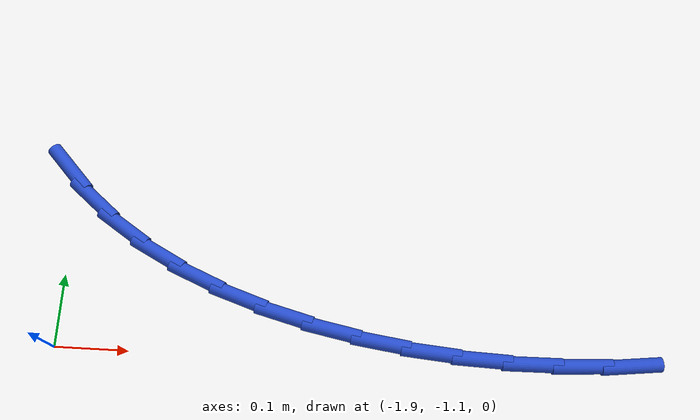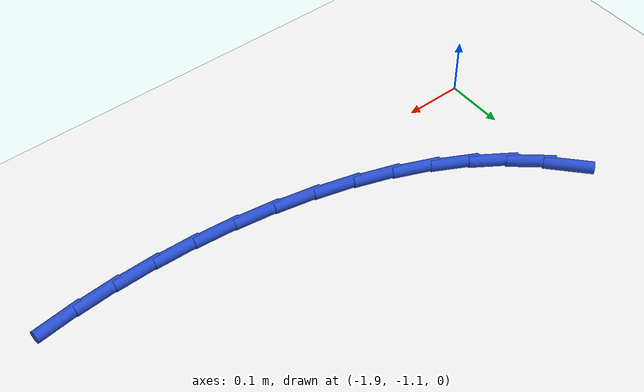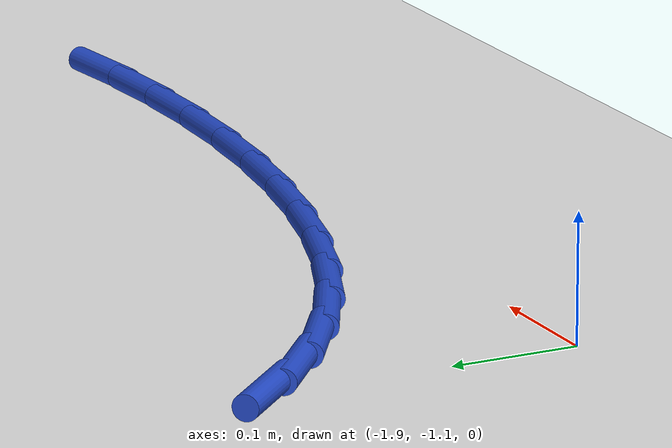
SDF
<sdf version="1.6">
 <world name="default">
  <model name="ground_plane">
   <static>1</static>
   <link name="link">
    <collision name="collision">
     <geometry><plane><normal>0 0 1</normal><size>100 100</size></plane></geometry>
     <surface><friction><ode><mu>100</mu><mu2>50</mu2></ode></friction></surface>
    </collision>
    <visual name="visual">
     <cast_shadows>0</cast_shadows>
     <geometry><plane><normal>0 0 1</normal><size>100 100</size></plane></geometry>
     <material>
      <script><uri>file://media/materials/scripts/gazebo.material</uri><name>Gazebo/WhiteGlow</name></script>
     </material>
    </visual>
   </link>
  </model>
  <model name="line">
   <link name="link_70">
    <pose>-1.9124991586058258 -0.8493401496633941 0.01 0 1.57 -0.8202526305610682</pose>
    <collision name="collision">
     <geometry><cylinder><radius>0.01</radius><length>0.08</length></cylinder></geometry>
    </collision>
    <visual name="visual">
     <material>
      <script><name>Gazebo/Blue</name><uri>file://media/materials/scripts/gazebo.material</uri></script>
     </material>
     <geometry><cylinder><radius>0.01</radius><length>0.08</length></cylinder></geometry>
    </visual>
   </link>
   <link name="link_71">
    <pose>-1.8721419729729636 -0.8926134109055369 0.01 0 1.57 -0.6937078887583386</pose>
    <collision name="collision">
     <geometry><cylinder><radius>0.01</radius><length>0.08</length></cylinder></geometry>
    </collision>
    <visual name="visual">
     <material>
      <script><name>Gazebo/Blue</name><uri>file://media/materials/scripts/gazebo.material</uri></script>
     </material>
     <geometry><cylinder><radius>0.01</radius><length>0.08</length></cylinder></geometry>
    </visual>
   </link>
   <link name="link_72">
    <pose>-1.8258200177106576 -0.9311342345573668 0.01 0 1.57 -0.5819659949127693</pose>
    <collision name="collision">
     <geometry><cylinder><radius>0.01</radius><length>0.08</length></cylinder></geometry>
    </collision>
    <visual name="visual">
     <material>
      <script><name>Gazebo/Blue</name><uri>file://media/materials/scripts/gazebo.material</uri></script>
     </material>
     <geometry><cylinder><radius>0.01</radius><length>0.08</length></cylinder></geometry>
    </visual>
   </link>
   <link name="link_73">
    <pose>-1.7742794026850748 -0.9650470297673156 0.01 0 1.57 -0.48409634761997855</pose>
    <collision name="collision">
     <geometry><cylinder><radius>0.01</radius><length>0.08</length></cylinder></geometry>
    </collision>
    <visual name="visual">
     <material>
      <script><name>Gazebo/Blue</name><uri>file://media/materials/scripts/gazebo.material</uri></script>
     </material>
     <geometry><cylinder><radius>0.01</radius><length>0.08</length></cylinder></geometry>
    </visual>
   </link>
   <link name="link_74">
    <pose>-1.7182708912846445 -0.9944979071656337 0.01 0 1.57 -0.39834366976544006</pose>
    <collision name="collision">
     <geometry><cylinder><radius>0.01</radius><length>0.08</length></cylinder></geometry>
    </collision>
    <visual name="visual">
     <material>
      <script><name>Gazebo/Blue</name><uri>file://media/materials/scripts/gazebo.material</uri></script>
     </material>
     <geometry><cylinder><radius>0.01</radius><length>0.08</length></cylinder></geometry>
    </visual>
   </link>
   <link name="link_75">
    <pose>-1.6585452468977975 -1.0196329773825699 0.01 0 1.57 -0.32272694917998784</pose>
    <collision name="collision">
     <geometry><cylinder><radius>0.01</radius><length>0.08</length></cylinder></geometry>
    </collision>
    <visual name="visual">
     <material>
      <script><name>Gazebo/Blue</name><uri>file://media/materials/scripts/gazebo.material</uri></script>
     </material>
     <geometry><cylinder><radius>0.01</radius><length>0.08</length></cylinder></geometry>
    </visual>
   </link>
   <link name="link_76">
    <pose>-1.595853232912962 -1.0405983510483738 0.01 0 1.57 -0.2553174758855041</pose>
    <collision name="collision">
     <geometry><cylinder><radius>0.01</radius><length>0.08</length></cylinder></geometry>
    </collision>
    <visual name="visual">
     <material>
      <script><name>Gazebo/Blue</name><uri>file://media/materials/scripts/gazebo.material</uri></script>
     </material>
     <geometry><cylinder><radius>0.01</radius><length>0.08</length></cylinder></geometry>
    </visual>
   </link>
   <link name="link_77">
    <pose>-1.5309456127185708 -1.0575401387932952 0.01 0 1.57 -0.1943488322025571</pose>
    <collision name="collision">
     <geometry><cylinder><radius>0.01</radius><length>0.08</length></cylinder></geometry>
    </collision>
    <visual name="visual">
     <material>
      <script><name>Gazebo/Blue</name><uri>file://media/materials/scripts/gazebo.material</uri></script>
     </material>
     <geometry><cylinder><radius>0.01</radius><length>0.08</length></cylinder></geometry>
    </visual>
   </link>
   <link name="link_78">
    <pose>-1.46457314970305 -1.0706044512475832 0.01 0 1.57 -0.13823082370874215</pose>
    <collision name="collision">
     <geometry><cylinder><radius>0.01</radius><length>0.08</length></cylinder></geometry>
    </collision>
    <visual name="visual">
     <material>
      <script><name>Gazebo/Blue</name><uri>file://media/materials/scripts/gazebo.material</uri></script>
     </material>
     <geometry><cylinder><radius>0.01</radius><length>0.08</length></cylinder></geometry>
    </visual>
   </link>
   <link name="link_79">
    <pose>-1.3974866072548335 -1.0799373990414873 0.01 0 1.57 -0.08551362969911616</pose>
    <collision name="collision">
     <geometry><cylinder><radius>0.01</radius><length>0.08</length></cylinder></geometry>
    </collision>
    <visual name="visual">
     <material>
      <script><name>Gazebo/Blue</name><uri>file://media/materials/scripts/gazebo.material</uri></script>
     </material>
     <geometry><cylinder><radius>0.01</radius><length>0.08</length></cylinder></geometry>
    </visual>
   </link>
   <link name="link_80">
    <pose>-1.3304367487623476 -1.0856850928052568 0.01 0 1.57 -0.0346881426649293</pose>
    <collision name="collision">
     <geometry><cylinder><radius>0.01</radius><length>0.08</length></cylinder></geometry>
    </collision>
    <visual name="visual">
     <material>
      <script><name>Gazebo/Blue</name><uri>file://media/materials/scripts/gazebo.material</uri></script>
     </material>
     <geometry><cylinder><radius>0.01</radius><length>0.08</length></cylinder></geometry>
    </visual>
   </link>
   <link name="link_81">
    <pose>-1.264085576534479 -1.0879876153242134 0.01 0 1.57 0.01581769226761975</pose>
    <collision name="collision">
     <geometry><cylinder><radius>0.01</radius><length>0.08</length></cylinder></geometry>
    </collision>
    <visual name="visual">
     <material>
      <script><name>Gazebo/Blue</name><uri>file://media/materials/scripts/gazebo.material</uri></script>
     </material>
     <geometry><cylinder><radius>0.01</radius><length>0.08</length></cylinder></geometry>
    </visual>
   </link>
   <link name="link_82">
    <pose>-1.198605203305899 -1.086951780541064 0.01 0 1.57 0.06613291749521003</pose>
    <collision name="collision">
     <geometry><cylinder><radius>0.01</radius><length>0.08</length></cylinder></geometry>
    </collision>
    <visual name="visual">
     <material>
      <script><name>Gazebo/Blue</name><uri>file://media/materials/scripts/gazebo.material</uri></script>
     </material>
     <geometry><cylinder><radius>0.01</radius><length>0.08</length></cylinder></geometry>
    </visual>
   </link>
   <link name="link_83">
    <pose>-1.1339996534200307 -1.0826729873643388 0.01 0 1.57 0.11601101548038126</pose>
    <collision name="collision">
     <geometry><cylinder><radius>0.01</radius><length>0.08</length></cylinder></geometry>
    </collision>
    <visual name="visual">
     <material>
      <script><name>Gazebo/Blue</name><uri>file://media/materials/scripts/gazebo.material</uri></script>
     </material>
     <geometry><cylinder><radius>0.01</radius><length>0.08</length></cylinder></geometry>
    </visual>
   </link>
  </model>
 </world>
</sdf>
